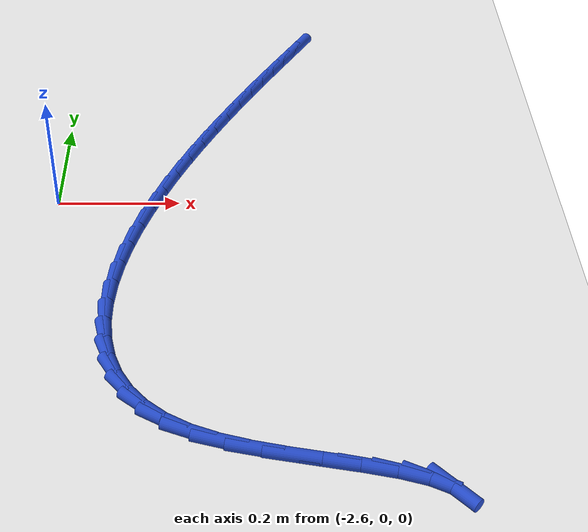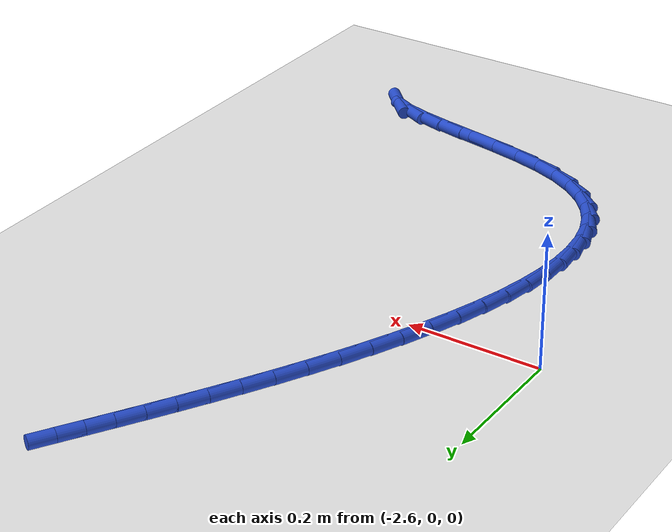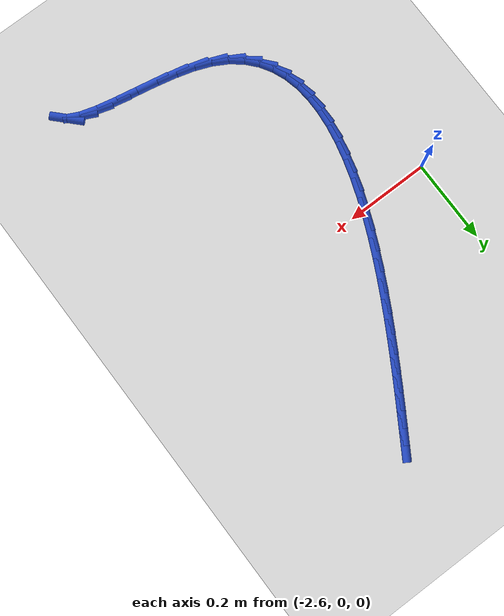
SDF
<sdf version="1.6">
 <world name="default">
  <model name="ground_plane">
   <static>1</static>
   <link name="link">
    <collision name="collision">
     <geometry><plane><normal>0 0 1</normal><size>100 100</size></plane></geometry>
     <surface><friction><ode><mu>100</mu><mu2>50</mu2></ode></friction></surface>
    </collision>
    <visual name="visual">
     <cast_shadows>0</cast_shadows>
     <geometry><plane><normal>0 0 1</normal><size>100 100</size></plane></geometry>
     <material>
      <script><uri>file://media/materials/scripts/gazebo.material</uri><name>Gazebo/WhiteGlow</name></script>
     </material>
    </visual>
   </link>
  </model>
  <model name="line">
   <link name="link_88">
    <pose>-2.1860293434845106 0.4651227123906827 0.01 0 1.57 1.0217682557692258</pose>
    <collision name="collision">
     <geometry><cylinder><radius>0.01</radius><length>0.08</length></cylinder></geometry>
    </collision>
    <visual name="visual">
     <material>
      <script><name>Gazebo/Blue</name><uri>file://media/materials/scripts/gazebo.material</uri></script>
     </material>
     <geometry><cylinder><radius>0.01</radius><length>0.08</length></cylinder></geometry>
    </visual>
   </link>
   <link name="link_89">
    <pose>-2.204954212538256 0.434188033977373 0.01 0 1.57 1.023168823665571</pose>
    <collision name="collision">
     <geometry><cylinder><radius>0.01</radius><length>0.08</length></cylinder></geometry>
    </collision>
    <visual name="visual">
     <material>
      <script><name>Gazebo/Blue</name><uri>file://media/materials/scripts/gazebo.material</uri></script>
     </material>
     <geometry><cylinder><radius>0.01</radius><length>0.08</length></cylinder></geometry>
    </visual>
   </link>
   <link name="link_90">
    <pose>-2.224291969621017 0.40247876858509446 0.01 0 1.57 1.0270247056320994</pose>
    <collision name="collision">
     <geometry><cylinder><radius>0.01</radius><length>0.08</length></cylinder></geometry>
    </collision>
    <visual name="visual">
     <material>
      <script><name>Gazebo/Blue</name><uri>file://media/materials/scripts/gazebo.material</uri></script>
     </material>
     <geometry><cylinder><radius>0.01</radius><length>0.08</length></cylinder></geometry>
    </visual>
   </link>
   <link name="link_91">
    <pose>-2.2440803060038386 0.3697474075747207 0.01 0 1.57 1.0330621233406914</pose>
    <collision name="collision">
     <geometry><cylinder><radius>0.01</radius><length>0.08</length></cylinder></geometry>
    </collision>
    <visual name="visual">
     <material>
      <script><name>Gazebo/Blue</name><uri>file://media/materials/scripts/gazebo.material</uri></script>
     </material>
     <geometry><cylinder><radius>0.01</radius><length>0.08</length></cylinder></geometry>
    </visual>
   </link>
   <link name="link_92">
    <pose>-2.2643569129577683 0.3357464423071251 0.01 0 1.57 1.0409656418419522</pose>
    <collision name="collision">
     <geometry><cylinder><radius>0.01</radius><length>0.08</length></cylinder></geometry>
    </collision>
    <visual name="visual">
     <material>
      <script><name>Gazebo/Blue</name><uri>file://media/materials/scripts/gazebo.material</uri></script>
     </material>
     <geometry><cylinder><radius>0.01</radius><length>0.08</length></cylinder></geometry>
    </visual>
   </link>
   <link name="link_93">
    <pose>-2.285159481753851 0.3002283641431821 0.01 0 1.57 1.0504325979613502</pose>
    <collision name="collision">
     <geometry><cylinder><radius>0.01</radius><length>0.08</length></cylinder></geometry>
    </collision>
    <visual name="visual">
     <material>
      <script><name>Gazebo/Blue</name><uri>file://media/materials/scripts/gazebo.material</uri></script>
     </material>
     <geometry><cylinder><radius>0.01</radius><length>0.08</length></cylinder></geometry>
    </visual>
   </link>
   <link name="link_94">
    <pose>-2.3065181450733 0.26295613063288814 0.01 0 1.57 1.0619288742501243</pose>
    <collision name="collision">
     <geometry><cylinder><radius>0.01</radius><length>0.08</length></cylinder></geometry>
    </collision>
    <visual name="visual">
     <material>
      <script><name>Gazebo/Blue</name><uri>file://media/materials/scripts/gazebo.material</uri></script>
     </material>
     <geometry><cylinder><radius>0.01</radius><length>0.08</length></cylinder></geometry>
    </visual>
   </link>
   <link name="link_95">
    <pose>-2.3282833126812488 0.22394155712524716 0.01 0 1.57 1.0761689494147606</pose>
    <collision name="collision">
     <geometry><cylinder><radius>0.01</radius><length>0.08</length></cylinder></geometry>
    </collision>
    <visual name="visual">
     <material>
      <script><name>Gazebo/Blue</name><uri>file://media/materials/scripts/gazebo.material</uri></script>
     </material>
     <geometry><cylinder><radius>0.01</radius><length>0.08</length></cylinder></geometry>
    </visual>
   </link>
   <link name="link_96">
    <pose>-2.350122345446034 0.1834499221700634 0.01 0 1.57 1.0933148690836472</pose>
    <collision name="collision">
     <geometry><cylinder><radius>0.01</radius><length>0.08</length></cylinder></geometry>
    </collision>
    <visual name="visual">
     <material>
      <script><name>Gazebo/Blue</name><uri>file://media/materials/scripts/gazebo.material</uri></script>
     </material>
     <geometry><cylinder><radius>0.01</radius><length>0.08</length></cylinder></geometry>
    </visual>
   </link>
   <link name="link_97">
    <pose>-2.371694380379902 0.14175789168371056 0.01 0 1.57 1.1136216946358182</pose>
    <collision name="collision">
     <geometry><cylinder><radius>0.01</radius><length>0.08</length></cylinder></geometry>
    </collision>
    <visual name="visual">
     <material>
      <script><name>Gazebo/Blue</name><uri>file://media/materials/scripts/gazebo.material</uri></script>
     </material>
     <geometry><cylinder><radius>0.01</radius><length>0.08</length></cylinder></geometry>
    </visual>
   </link>
   <link name="link_98">
    <pose>-2.392658554495098 0.09914213158256215 0.01 0 1.57 1.1374744084557225</pose>
    <collision name="collision">
     <geometry><cylinder><radius>0.01</radius><length>0.08</length></cylinder></geometry>
    </collision>
    <visual name="visual">
     <material>
      <script><name>Gazebo/Blue</name><uri>file://media/materials/scripts/gazebo.material</uri></script>
     </material>
     <geometry><cylinder><radius>0.01</radius><length>0.08</length></cylinder></geometry>
    </visual>
   </link>
   <link name="link_99">
    <pose>-2.412674004803869 0.05587930778299313 0.01 0 1.57 1.1654029510320871</pose>
    <collision name="collision">
     <geometry><cylinder><radius>0.01</radius><length>0.08</length></cylinder></geometry>
    </collision>
    <visual name="visual">
     <material>
      <script><name>Gazebo/Blue</name><uri>file://media/materials/scripts/gazebo.material</uri></script>
     </material>
     <geometry><cylinder><radius>0.01</radius><length>0.08</length></cylinder></geometry>
    </visual>
   </link>
   <link name="link_100">
    <pose>-2.4313998683184592 0.012246086201377048 0.01 0 1.57 1.198108770199826</pose>
    <collision name="collision">
     <geometry><cylinder><radius>0.01</radius><length>0.08</length></cylinder></geometry>
    </collision>
    <visual name="visual">
     <material>
      <script><name>Gazebo/Blue</name><uri>file://media/materials/scripts/gazebo.material</uri></script>
     </material>
     <geometry><cylinder><radius>0.01</radius><length>0.08</length></cylinder></geometry>
    </visual>
   </link>
   <link name="link_101">
    <pose>-2.448495282051116 -0.03148086724591257 0.01 0 1.57 1.2365029911811767</pose>
    <collision name="collision">
     <geometry><cylinder><radius>0.01</radius><length>0.08</length></cylinder></geometry>
    </collision>
    <visual name="visual">
     <material>
      <script><name>Gazebo/Blue</name><uri>file://media/materials/scripts/gazebo.material</uri></script>
     </material>
     <geometry><cylinder><radius>0.01</radius><length>0.08</length></cylinder></geometry>
    </visual>
   </link>
   <link name="link_102">
    <pose>-2.463619383014084 -0.07502488664250086 0.01 0 1.57 1.2817560088314865</pose>
    <collision name="collision">
     <geometry><cylinder><radius>0.01</radius><length>0.08</length></cylinder></geometry>
    </collision>
    <visual name="visual">
     <material>
      <script><name>Gazebo/Blue</name><uri>file://media/materials/scripts/gazebo.material</uri></script>
     </material>
     <geometry><cylinder><radius>0.01</radius><length>0.08</length></cylinder></geometry>
    </visual>
   </link>
   <link name="link_103">
    <pose>-2.476431308219609 -0.11810930607201402 0.01 0 1.57 1.335355627788288</pose>
    <collision name="collision">
     <geometry><cylinder><radius>0.01</radius><length>0.08</length></cylinder></geometry>
    </collision>
    <visual name="visual">
     <material>
      <script><name>Gazebo/Blue</name><uri>file://media/materials/scripts/gazebo.material</uri></script>
     </material>
     <geometry><cylinder><radius>0.01</radius><length>0.08</length></cylinder></geometry>
    </visual>
   </link>
   <link name="link_104">
    <pose>-2.4865901946799376 -0.16045745961807822 0.01 0 1.57 1.399163256716715</pose>
    <collision name="collision">
     <geometry><cylinder><radius>0.01</radius><length>0.08</length></cylinder></geometry>
    </collision>
    <visual name="visual">
     <material>
      <script><name>Gazebo/Blue</name><uri>file://media/materials/scripts/gazebo.material</uri></script>
     </material>
     <geometry><cylinder><radius>0.01</radius><length>0.08</length></cylinder></geometry>
    </visual>
   </link>
   <link name="link_105">
    <pose>-2.4937551794073145 -0.20179268136431947 0.01 0 1.57 1.475439995708261</pose>
    <collision name="collision">
     <geometry><cylinder><radius>0.01</radius><length>0.08</length></cylinder></geometry>
    </collision>
    <visual name="visual">
     <material>
      <script><name>Gazebo/Blue</name><uri>file://media/materials/scripts/gazebo.material</uri></script>
     </material>
     <geometry><cylinder><radius>0.01</radius><length>0.08</length></cylinder></geometry>
    </visual>
   </link>
   <link name="link_106">
    <pose>-2.4975853994139863 -0.24183830539436452 0.01 0 1.57 1.5667788102643556</pose>
    <collision name="collision">
     <geometry><cylinder><radius>0.01</radius><length>0.08</length></cylinder></geometry>
    </collision>
    <visual name="visual">
     <material>
      <script><name>Gazebo/Blue</name><uri>file://media/materials/scripts/gazebo.material</uri></script>
     </material>
     <geometry><cylinder><radius>0.01</radius><length>0.08</length></cylinder></geometry>
    </visual>
   </link>
   <link name="link_107">
    <pose>-2.497739991712198 -0.2803176657918376 0.01 0 1.57 -1.4657727476547477</pose>
    <collision name="collision">
     <geometry><cylinder><radius>0.01</radius><length>0.08</length></cylinder></geometry>
    </collision>
    <visual name="visual">
     <material>
      <script><name>Gazebo/Blue</name><uri>file://media/materials/scripts/gazebo.material</uri></script>
     </material>
     <geometry><cylinder><radius>0.01</radius><length>0.08</length></cylinder></geometry>
    </visual>
   </link>
   <link name="link_108">
    <pose>-2.493878093314196 -0.31695409664036567 0.01 0 1.57 -1.3370268820569553</pose>
    <collision name="collision">
     <geometry><cylinder><radius>0.01</radius><length>0.08</length></cylinder></geometry>
    </collision>
    <visual name="visual">
     <material>
      <script><name>Gazebo/Blue</name><uri>file://media/materials/scripts/gazebo.material</uri></script>
     </material>
     <geometry><cylinder><radius>0.01</radius><length>0.08</length></cylinder></geometry>
    </visual>
   </link>
   <link name="link_109">
    <pose>-2.4856588412322256 -0.35147093202357454 0.01 0 1.57 -1.1884330550314588</pose>
    <collision name="collision">
     <geometry><cylinder><radius>0.01</radius><length>0.08</length></cylinder></geometry>
    </collision>
    <visual name="visual">
     <material>
      <script><name>Gazebo/Blue</name><uri>file://media/materials/scripts/gazebo.material</uri></script>
     </material>
     <geometry><cylinder><radius>0.01</radius><length>0.08</length></cylinder></geometry>
    </visual>
   </link>
   <link name="link_110">
    <pose>-2.4727413724785325 -0.38359150602509046 0.01 0 1.57 -1.0232175975298183</pose>
    <collision name="collision">
     <geometry><cylinder><radius>0.01</radius><length>0.08</length></cylinder></geometry>
    </collision>
    <visual name="visual">
     <material>
      <script><name>Gazebo/Blue</name><uri>file://media/materials/scripts/gazebo.material</uri></script>
     </material>
     <geometry><cylinder><radius>0.01</radius><length>0.08</length></cylinder></geometry>
    </visual>
   </link>
   <link name="link_111">
    <pose>-2.4547848240653622 -0.413039152728539 0.01 0 1.57 -0.8487544383602363</pose>
    <collision name="collision">
     <geometry><cylinder><radius>0.01</radius><length>0.08</length></cylinder></geometry>
    </collision>
    <visual name="visual">
     <material>
      <script><name>Gazebo/Blue</name><uri>file://media/materials/scripts/gazebo.material</uri></script>
     </material>
     <geometry><cylinder><radius>0.01</radius><length>0.08</length></cylinder></geometry>
    </visual>
   </link>
   <link name="link_112">
    <pose>-2.4314483330049614 -0.4395372062175472 0.01 0 1.57 -0.6752854025305284</pose>
    <collision name="collision">
     <geometry><cylinder><radius>0.01</radius><length>0.08</length></cylinder></geometry>
    </collision>
    <visual name="visual">
     <material>
      <script><name>Gazebo/Blue</name><uri>file://media/materials/scripts/gazebo.material</uri></script>
     </material>
     <geometry><cylinder><radius>0.01</radius><length>0.08</length></cylinder></geometry>
    </visual>
   </link>
   <link name="link_113">
    <pose>-2.4023910363095755 -0.4628090005757396 0.01 0 1.57 -0.5127019959055414</pose>
    <collision name="collision">
     <geometry><cylinder><radius>0.01</radius><length>0.08</length></cylinder></geometry>
    </collision>
    <visual name="visual">
     <material>
      <script><name>Gazebo/Blue</name><uri>file://media/materials/scripts/gazebo.material</uri></script>
     </material>
     <geometry><cylinder><radius>0.01</radius><length>0.08</length></cylinder></geometry>
    </visual>
   </link>
   <link name="link_114">
    <pose>-2.36727207099145 -0.4825778698867428 0.01 0 1.57 -0.36973364019945565</pose>
    <collision name="collision">
     <geometry><cylinder><radius>0.01</radius><length>0.08</length></cylinder></geometry>
    </collision>
    <visual name="visual">
     <material>
      <script><name>Gazebo/Blue</name><uri>file://media/materials/scripts/gazebo.material</uri></script>
     </material>
     <geometry><cylinder><radius>0.01</radius><length>0.08</length></cylinder></geometry>
    </visual>
   </link>
   <link name="link_115">
    <pose>-2.325871359151126 -0.49862299574981034 0.01 0 1.57 -0.26912842647144597</pose>
    <collision name="collision">
     <geometry><cylinder><radius>0.01</radius><length>0.08</length></cylinder></geometry>
    </collision>
    <visual name="visual">
     <material>
      <script><name>Gazebo/Blue</name><uri>file://media/materials/scripts/gazebo.material</uri></script>
     </material>
     <geometry><cylinder><radius>0.01</radius><length>0.08</length></cylinder></geometry>
    </visual>
   </link>
   <link name="link_116">
    <pose>-2.279475092969701 -0.5114200152873947 0.01 0 1.57 -0.21069546200382805</pose>
    <collision name="collision">
     <geometry><cylinder><radius>0.01</radius><length>0.08</length></cylinder></geometry>
    </collision>
    <visual name="visual">
     <material>
      <script><name>Gazebo/Blue</name><uri>file://media/materials/scripts/gazebo.material</uri></script>
     </material>
     <geometry><cylinder><radius>0.01</radius><length>0.08</length></cylinder></geometry>
    </visual>
   </link>
   <link name="link_117">
    <pose>-2.2303920605047605 -0.5219173842454957 0.01 0 1.57 -0.1830979334890714</pose>
    <collision name="collision">
     <geometry><cylinder><radius>0.01</radius><length>0.08</length></cylinder></geometry>
    </collision>
    <visual name="visual">
     <material>
      <script><name>Gazebo/Blue</name><uri>file://media/materials/scripts/gazebo.material</uri></script>
     </material>
     <geometry><cylinder><radius>0.01</radius><length>0.08</length></cylinder></geometry>
    </visual>
   </link>
   <link name="link_118">
    <pose>-2.180950528376904 -0.5310725646917367 0.01 0 1.57 -0.1826909530559328</pose>
    <collision name="collision">
     <geometry><cylinder><radius>0.01</radius><length>0.08</length></cylinder></geometry>
    </collision>
    <visual name="visual">
     <material>
      <script><name>Gazebo/Blue</name><uri>file://media/materials/scripts/gazebo.material</uri></script>
     </material>
     <geometry><cylinder><radius>0.01</radius><length>0.08</length></cylinder></geometry>
    </visual>
   </link>
   <link name="link_119">
    <pose>-2.1334787632067354 -0.5398430186937416 0.01 0 1.57 -0.2131226387007727</pose>
    <collision name="collision">
     <geometry><cylinder><radius>0.01</radius><length>0.08</length></cylinder></geometry>
    </collision>
    <visual name="visual">
     <material>
      <script><name>Gazebo/Blue</name><uri>file://media/materials/scripts/gazebo.material</uri></script>
     </material>
     <geometry><cylinder><radius>0.01</radius><length>0.08</length></cylinder></geometry>
    </visual>
   </link>
   <link name="link_120">
    <pose>-2.090305031614855 -0.5491862083191326 0.01 0 1.57 -0.2891748752520602</pose>
    <collision name="collision">
     <geometry><cylinder><radius>0.01</radius><length>0.08</length></cylinder></geometry>
    </collision>
    <visual name="visual">
     <material>
      <script><name>Gazebo/Blue</name><uri>file://media/materials/scripts/gazebo.material</uri></script>
     </material>
     <geometry><cylinder><radius>0.01</radius><length>0.08</length></cylinder></geometry>
    </visual>
   </link>
   <link name="link_121">
    <pose>-2.0537576002218656 -0.5600595956355334 0.01 0 1.57 -0.450944989912299</pose>
    <collision name="collision">
     <geometry><cylinder><radius>0.01</radius><length>0.08</length></cylinder></geometry>
    </collision>
    <visual name="visual">
     <material>
      <script><name>Gazebo/Blue</name><uri>file://media/materials/scripts/gazebo.material</uri></script>
     </material>
     <geometry><cylinder><radius>0.01</radius><length>0.08</length></cylinder></geometry>
    </visual>
   </link>
   <link name="link_122">
    <pose>-2.026164735648368 -0.5734206427105676 0.01 0 1.57 -0.800378766626456</pose>
    <collision name="collision">
     <geometry><cylinder><radius>0.01</radius><length>0.08</length></cylinder></geometry>
    </collision>
    <visual name="visual">
     <material>
      <script><name>Gazebo/Blue</name><uri>file://media/materials/scripts/gazebo.material</uri></script>
     </material>
     <geometry><cylinder><radius>0.01</radius><length>0.08</length></cylinder></geometry>
    </visual>
   </link>
  </model>
 </world>
</sdf>
